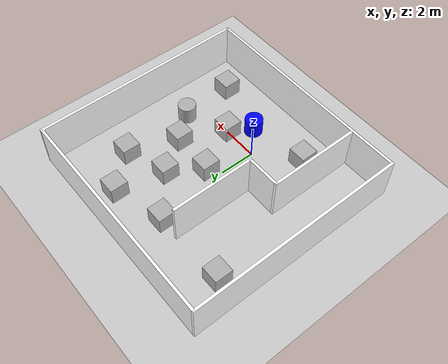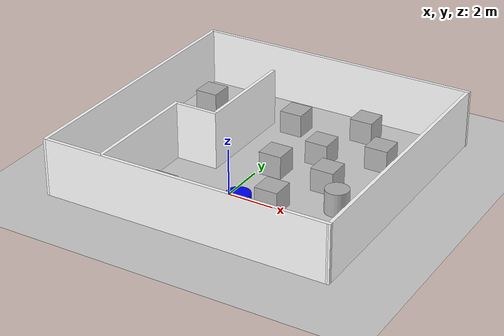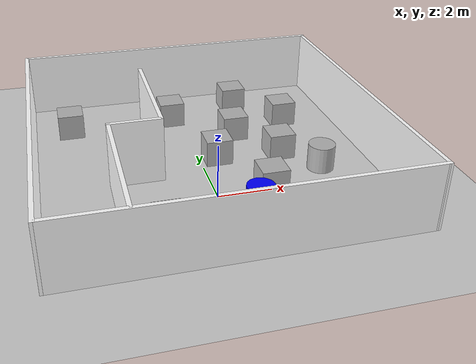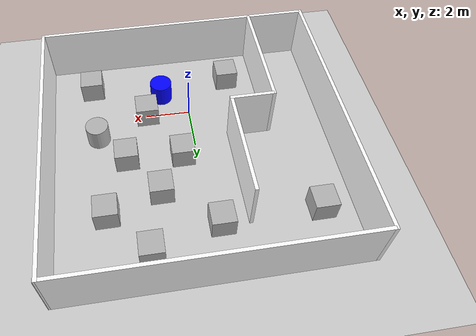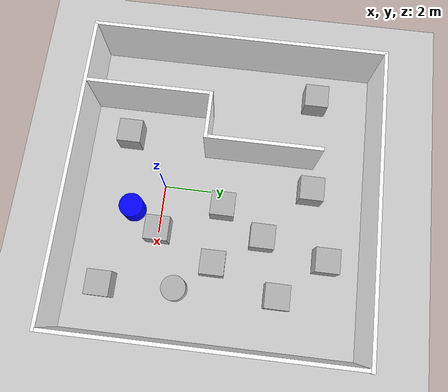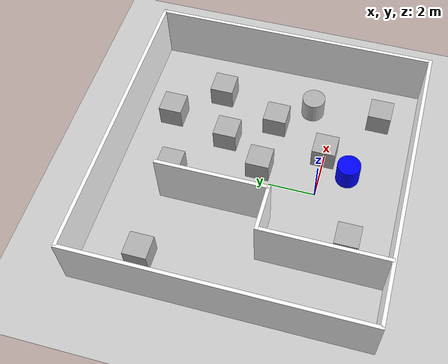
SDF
<sdf version='1.10'>
  <world name='default'>
    <physics name='1ms' type='ignored'>
      <max_step_size>0.001</max_step_size>
      <real_time_factor>1</real_time_factor>
      <real_time_update_rate>1000</real_time_update_rate>
    </physics>
    <plugin name='gz::sim::systems::Physics' filename='gz-sim-physics-system'/>
    <plugin name='gz::sim::systems::UserCommands' filename='gz-sim-user-commands-system'/>
    <plugin name='gz::sim::systems::SceneBroadcaster' filename='gz-sim-scene-broadcaster-system'/>
    <plugin name='gz::sim::systems::Contact' filename='gz-sim-contact-system'/>
    <gravity>0 0 -9.8000000000000007</gravity>
    <magnetic_field>6.0000000000000002e-06 2.3e-05 -4.1999999999999998e-05</magnetic_field>
    <atmosphere type='adiabatic'/>
    <scene>
      <ambient>0.400000006 0.400000006 0.400000006 1</ambient>
      <background>0.699999988 0.699999988 0.699999988 1</background>
      <shadows>true</shadows>
    </scene>
    <model name='ground_plane'>
      <static>true</static>
      <link name='link'>
        <collision name='collision'>
          <geometry>
            <plane>
              <normal>0 0 1</normal>
              <size>100 100</size>
            </plane>
          </geometry>
          <surface>
            <friction>
              <ode/>
            </friction>
            <bounce/>
            <contact/>
          </surface>
        </collision>
        <visual name='visual'>
          <geometry>
            <plane>
              <normal>0 0 1</normal>
              <size>100 100</size>
            </plane>
          </geometry>
          <material>
            <ambient>0.800000012 0.800000012 0.800000012 1</ambient>
            <diffuse>0.800000012 0.800000012 0.800000012 1</diffuse>
            <specular>0.800000012 0.800000012 0.800000012 1</specular>
          </material>
        </visual>
        <pose>0 0 0 0 0 0</pose>
        <inertial>
          <pose>0 0 0 0 0 0</pose>
          <mass>1</mass>
          <inertia>
            <ixx>1</ixx>
            <ixy>0</ixy>
            <ixz>0</ixz>
            <iyy>1</iyy>
            <iyz>0</iyz>
            <izz>1</izz>
          </inertia>
        </inertial>
        <enable_wind>false</enable_wind>
      </link>
      <pose>0 0 0 0 0 0</pose>
      <self_collide>false</self_collide>
    </model>
    <model name='simple_world_walls'>
      <static>true</static>
      <pose>0.21870299999999654 2.4856400000000023 0 0 0 7.7715611723760958e-16</pose>
      <link name='Wall_11'>
        <pose>-3.6911499999999999 -3.4349099999999999 1.25 0 0 1.5708</pose>
        <collision name='collision'>
          <geometry>
            <box>
              <size>5.25 0.14999999999999999 2.5</size>
            </box>
          </geometry>
          <surface>
            <friction>
              <ode/>
            </friction>
            <bounce/>
            <contact/>
          </surface>
        </collision>
        <visual name='visual'>
          <geometry>
            <box>
              <size>5.25 0.14999999999999999 2.5</size>
            </box>
          </geometry>
          <material>
            <ambient>1 1 1 1</ambient>
            <diffuse>1 1 1 1</diffuse>
          </material>
        </visual>
        <inertial>
          <pose>0 0 0 0 0 0</pose>
          <mass>1</mass>
          <inertia>
            <ixx>1</ixx>
            <ixy>0</ixy>
            <ixz>0</ixz>
            <iyy>1</iyy>
            <iyz>0</iyz>
            <izz>1</izz>
          </inertia>
        </inertial>
        <enable_wind>false</enable_wind>
      </link>
      <link name='Wall_12'>
        <pose>-2.7661499999999974 -0.8849140000000002 1.25 0 0 -7.7715611723760958e-16</pose>
        <collision name='collision'>
          <geometry>
            <box>
              <size>2 0.14999999999999999 2.5</size>
            </box>
          </geometry>
          <surface>
            <friction>
              <ode/>
            </friction>
            <bounce/>
            <contact/>
          </surface>
        </collision>
        <visual name='visual'>
          <geometry>
            <box>
              <size>2 0.14999999999999999 2.5</size>
            </box>
          </geometry>
          <material>
            <ambient>1 1 1 1</ambient>
            <diffuse>1 1 1 1</diffuse>
          </material>
        </visual>
        <inertial>
          <pose>0 0 0 0 0 0</pose>
          <mass>1</mass>
          <inertia>
            <ixx>1</ixx>
            <ixy>0</ixy>
            <ixz>0</ixz>
            <iyy>1</iyy>
            <iyz>0</iyz>
            <izz>1</izz>
          </inertia>
        </inertial>
        <enable_wind>false</enable_wind>
      </link>
      <link name='Wall_13'>
        <pose>-1.8411499999999956 1.4150899999999984 1.25 0 0 1.5707999999999998</pose>
        <collision name='collision'>
          <geometry>
            <box>
              <size>4.75 0.14999999999999999 2.5</size>
            </box>
          </geometry>
          <surface>
            <friction>
              <ode/>
            </friction>
            <bounce/>
            <contact/>
          </surface>
        </collision>
        <visual name='visual'>
          <geometry>
            <box>
              <size>4.75 0.14999999999999999 2.5</size>
            </box>
          </geometry>
          <material>
            <ambient>1 1 1 1</ambient>
            <diffuse>1 1 1 1</diffuse>
          </material>
        </visual>
        <inertial>
          <pose>0 0 0 0 0 0</pose>
          <mass>1</mass>
          <inertia>
            <ixx>1</ixx>
            <ixy>0</ixy>
            <ixz>0</ixz>
            <iyy>1</iyy>
            <iyz>0</iyz>
            <izz>1</izz>
          </inertia>
        </inertial>
        <enable_wind>false</enable_wind>
      </link>
      <link name='Wall_3'>
        <pose>-0.020767000000001617 -6.0502500000000019 1.25 0 0 -7.7715611723760958e-16</pose>
        <collision name='collision'>
          <geometry>
            <box>
              <size>12.5 0.14999999999999999 2.5</size>
            </box>
          </geometry>
          <surface>
            <friction>
              <ode/>
            </friction>
            <bounce/>
            <contact/>
          </surface>
        </collision>
        <visual name='visual'>
          <geometry>
            <box>
              <size>12.5 0.14999999999999999 2.5</size>
            </box>
          </geometry>
          <material>
            <ambient>1 1 1 1</ambient>
            <diffuse>1 1 1 1</diffuse>
          </material>
        </visual>
        <inertial>
          <pose>0 0 0 0 0 0</pose>
          <mass>1</mass>
          <inertia>
            <ixx>1</ixx>
            <ixy>0</ixy>
            <ixz>0</ixz>
            <iyy>1</iyy>
            <iyz>0</iyz>
            <izz>1</izz>
          </inertia>
        </inertial>
        <enable_wind>false</enable_wind>
      </link>
      <link name='Wall_4'>
        <pose>6.1311000000000018 -0.00024700000000743572 1.25 0 0 1.5746199999999997</pose>
        <collision name='collision'>
          <geometry>
            <box>
              <size>12.25 0.14999999999999999 2.5</size>
            </box>
          </geometry>
          <surface>
            <friction>
              <ode/>
            </friction>
            <bounce/>
            <contact/>
          </surface>
        </collision>
        <visual name='visual'>
          <geometry>
            <box>
              <size>12.25 0.14999999999999999 2.5</size>
            </box>
          </geometry>
          <material>
            <ambient>1 1 1 1</ambient>
            <diffuse>1 1 1 1</diffuse>
          </material>
        </visual>
        <inertial>
          <pose>0 0 0 0 0 0</pose>
          <mass>1</mass>
          <inertia>
            <ixx>1</ixx>
            <ixy>0</ixy>
            <ixz>0</ixz>
            <iyy>1</iyy>
            <iyz>0</iyz>
            <izz>1</izz>
          </inertia>
        </inertial>
        <enable_wind>false</enable_wind>
      </link>
      <link name='Wall_5'>
        <pose>-0.043897999999992221 6.0497499999999977 1.25 0 0 3.141589999999999</pose>
        <collision name='collision'>
          <geometry>
            <box>
              <size>12.5 0.14999999999999999 2.5</size>
            </box>
          </geometry>
          <surface>
            <friction>
              <ode/>
            </friction>
            <bounce/>
            <contact/>
          </surface>
        </collision>
        <visual name='visual'>
          <geometry>
            <box>
              <size>12.5 0.14999999999999999 2.5</size>
            </box>
          </geometry>
          <material>
            <ambient>1 1 1 1</ambient>
            <diffuse>1 1 1 1</diffuse>
          </material>
        </visual>
        <inertial>
          <pose>0 0 0 0 0 0</pose>
          <mass>1</mass>
          <inertia>
            <ixx>1</ixx>
            <ixy>0</ixy>
            <ixz>0</ixz>
            <iyy>1</iyy>
            <iyz>0</iyz>
            <izz>1</izz>
          </inertia>
        </inertial>
        <enable_wind>false</enable_wind>
      </link>
      <link name='Wall_9'>
        <pose>-6.3013699999999968 0.00048700000000234667 1.25 0 0 1.5707999999999998</pose>
        <collision name='collision'>
          <geometry>
            <box>
              <size>12.25 0.14999999999999999 2.5</size>
            </box>
          </geometry>
          <surface>
            <friction>
              <ode/>
            </friction>
            <bounce/>
            <contact/>
          </surface>
        </collision>
        <visual name='visual'>
          <geometry>
            <box>
              <size>12.25 0.14999999999999999 2.5</size>
            </box>
          </geometry>
          <material>
            <ambient>1 1 1 1</ambient>
            <diffuse>1 1 1 1</diffuse>
          </material>
        </visual>
        <inertial>
          <pose>0 0 0 0 0 0</pose>
          <mass>1</mass>
          <inertia>
            <ixx>1</ixx>
            <ixy>0</ixy>
            <ixz>0</ixz>
            <iyy>1</iyy>
            <iyz>0</iyz>
            <izz>1</izz>
          </inertia>
        </inertial>
        <enable_wind>false</enable_wind>
      </link>
      <self_collide>false</self_collide>
    </model>
    <model name='cylinder_obstacles'>
      <static>false</static>
      <link name='cylinder_1'>
        <pose>1.1699999999999999 -1.1599999999999999 0.5 0 0 0</pose>
        <collision name='collision'>
          <geometry>
            <cylinder>
              <radius>0.5</radius>
              <length>1</length>
            </cylinder>
          </geometry>
          <surface>
            <friction>
              <ode/>
            </friction>
            <bounce/>
            <contact/>
          </surface>
        </collision>
        <visual name='visual'>
          <geometry>
            <cylinder>
              <radius>0.5</radius>
              <length>1</length>
            </cylinder>
          </geometry>
          <material>
            <ambient>0 0 1 1</ambient>
            <diffuse>0 0 1 1</diffuse>
          </material>
        </visual>
        <inertial>
          <pose>0 0 0 0 0 0</pose>
          <mass>1</mass>
          <inertia>
            <ixx>1</ixx>
            <ixy>0</ixy>
            <ixz>0</ixz>
            <iyy>1</iyy>
            <iyz>0</iyz>
            <izz>1</izz>
          </inertia>
        </inertial>
        <enable_wind>false</enable_wind>
      </link>
      <pose>0 0 -5.7163865080367415e-07 -3.6662838521220562e-20 2.7712421664070889e-19 2.8676309396003893e-22</pose>
      <self_collide>false</self_collide>
    </model>
    <model name='box'>
      <pose>0.65675670861981139 2.566512989994199 0.49999999990199806 6.2287739151293738e-22 9.3279666454713669e-22 -3.6315533669320137e-22</pose>
      <link name='box_link'>
        <inertial>
          <inertia>
            <ixx>0.16666</ixx>
            <ixy>0</ixy>
            <ixz>0</ixz>
            <iyy>0.16666</iyy>
            <iyz>0</iyz>
            <izz>0.16666</izz>
          </inertia>
          <mass>1</mass>
          <pose>0 0 0 0 0 0</pose>
        </inertial>
        <collision name='box_collision'>
          <geometry>
            <box>
              <size>1 1 1</size>
            </box>
          </geometry>
          <surface>
            <friction>
              <ode/>
            </friction>
            <bounce/>
            <contact/>
          </surface>
        </collision>
        <visual name='box_visual'>
          <geometry>
            <box>
              <size>1 1 1</size>
            </box>
          </geometry>
          <material>
            <ambient>0.300000012 0.300000012 0.300000012 1</ambient>
            <diffuse>0.699999988 0.699999988 0.699999988 1</diffuse>
            <specular>1 1 1 1</specular>
          </material>
        </visual>
        <pose>0 0 0 0 0 0</pose>
        <enable_wind>false</enable_wind>
      </link>
      <static>false</static>
      <self_collide>false</self_collide>
    </model>
    <model name='box_0'>
      <pose>-2.05357444367782 -1.7468708328964424 0.49999999990199806 6.2287739151293738e-22 9.3279666454713669e-22 -3.6315533669320137e-22</pose>
      <link name='box_link'>
        <inertial>
          <inertia>
            <ixx>0.16666</ixx>
            <ixy>0</ixy>
            <ixz>0</ixz>
            <iyy>0.16666</iyy>
            <iyz>0</iyz>
            <izz>0.16666</izz>
          </inertia>
          <mass>1</mass>
          <pose>0 0 0 0 0 0</pose>
        </inertial>
        <collision name='box_collision'>
          <geometry>
            <box>
              <size>1 1 1</size>
            </box>
          </geometry>
          <surface>
            <friction>
              <ode/>
            </friction>
            <bounce/>
            <contact/>
          </surface>
        </collision>
        <visual name='box_visual'>
          <geometry>
            <box>
              <size>1 1 1</size>
            </box>
          </geometry>
          <material>
            <ambient>0.300000012 0.300000012 0.300000012 1</ambient>
            <diffuse>0.699999988 0.699999988 0.699999988 1</diffuse>
            <specular>1 1 1 1</specular>
          </material>
        </visual>
        <pose>0 0 0 0 0 0</pose>
        <enable_wind>false</enable_wind>
      </link>
      <static>false</static>
      <self_collide>false</self_collide>
    </model>
    <model name='box_1'>
      <pose>1.9667049210261833 0.013356836982447051 0.49999999990199806 6.2287739151293738e-22 9.3279666454713669e-22 -3.6315533669320137e-22</pose>
      <link name='box_link'>
        <inertial>
          <inertia>
            <ixx>0.16666</ixx>
            <ixy>0</ixy>
            <ixz>0</ixz>
            <iyy>0.16666</iyy>
            <iyz>0</iyz>
            <izz>0.16666</izz>
          </inertia>
          <mass>1</mass>
          <pose>0 0 0 0 0 0</pose>
        </inertial>
        <collision name='box_collision'>
          <geometry>
            <box>
              <size>1 1 1</size>
            </box>
          </geometry>
          <surface>
            <friction>
              <ode/>
            </friction>
            <bounce/>
            <contact/>
          </surface>
        </collision>
        <visual name='box_visual'>
          <geometry>
            <box>
              <size>1 1 1</size>
            </box>
          </geometry>
          <material>
            <ambient>0.300000012 0.300000012 0.300000012 1</ambient>
            <diffuse>0.699999988 0.699999988 0.699999988 1</diffuse>
            <specular>1 1 1 1</specular>
          </material>
        </visual>
        <pose>0 0 0 0 0 0</pose>
        <enable_wind>false</enable_wind>
      </link>
      <static>false</static>
      <self_collide>false</self_collide>
    </model>
    <model name='box_2'>
      <pose>3.0953835845117559 2.4361445422243682 0.49999999990199806 6.2287739151293738e-22 9.3279666454713669e-22 -3.6315533669320137e-22</pose>
      <link name='box_link'>
        <inertial>
          <inertia>
            <ixx>0.16666</ixx>
            <ixy>0</ixy>
            <ixz>0</ixz>
            <iyy>0.16666</iyy>
            <iyz>0</iyz>
            <izz>0.16666</izz>
          </inertia>
          <mass>1</mass>
          <pose>0 0 0 0 0 0</pose>
        </inertial>
        <collision name='box_collision'>
          <geometry>
            <box>
              <size>1 1 1</size>
            </box>
          </geometry>
          <surface>
            <friction>
              <ode/>
            </friction>
            <bounce/>
            <contact/>
          </surface>
        </collision>
        <visual name='box_visual'>
          <geometry>
            <box>
              <size>1 1 1</size>
            </box>
          </geometry>
          <material>
            <ambient>0.300000012 0.300000012 0.300000012 1</ambient>
            <diffuse>0.699999988 0.699999988 0.699999988 1</diffuse>
            <specular>1 1 1 1</specular>
          </material>
        </visual>
        <pose>0 0 0 0 0 0</pose>
        <enable_wind>false</enable_wind>
      </link>
      <static>false</static>
      <self_collide>false</self_collide>
    </model>
    <model name='box_3'>
      <pose>1.8002298266211816 4.3268263190330387 0.49999999990199806 6.2287739151293738e-22 9.3279666454713669e-22 -3.6315533669320137e-22</pose>
      <link name='box_link'>
        <inertial>
          <inertia>
            <ixx>0.16666</ixx>
            <ixy>0</ixy>
            <ixz>0</ixz>
            <iyy>0.16666</iyy>
            <iyz>0</iyz>
            <izz>0.16666</izz>
          </inertia>
          <mass>1</mass>
          <pose>0 0 0 0 0 0</pose>
        </inertial>
        <collision name='box_collision'>
          <geometry>
            <box>
              <size>1 1 1</size>
            </box>
          </geometry>
          <surface>
            <friction>
              <ode/>
            </friction>
            <bounce/>
            <contact/>
          </surface>
        </collision>
        <visual name='box_visual'>
          <geometry>
            <box>
              <size>1 1 1</size>
            </box>
          </geometry>
          <material>
            <ambient>0.300000012 0.300000012 0.300000012 1</ambient>
            <diffuse>0.699999988 0.699999988 0.699999988 1</diffuse>
            <specular>1 1 1 1</specular>
          </material>
        </visual>
        <pose>0 0 0 0 0 0</pose>
        <enable_wind>false</enable_wind>
      </link>
      <static>false</static>
      <self_collide>false</self_collide>
    </model>
    <model name='box_4'>
      <pose>-0.42423659098912697 6.1628344210863037 0.49999999990199806 6.2287739151293738e-22 9.3279666454713669e-22 -3.6315533669320137e-22</pose>
      <link name='box_link'>
        <inertial>
          <inertia>
            <ixx>0.16666</ixx>
            <ixy>0</ixy>
            <ixz>0</ixz>
            <iyy>0.16666</iyy>
            <iyz>0</iyz>
            <izz>0.16666</izz>
          </inertia>
          <mass>1</mass>
          <pose>0 0 0 0 0 0</pose>
        </inertial>
        <collision name='box_collision'>
          <geometry>
            <box>
              <size>1 1 1</size>
            </box>
          </geometry>
          <surface>
            <friction>
              <ode/>
            </friction>
            <bounce/>
            <contact/>
          </surface>
        </collision>
        <visual name='box_visual'>
          <geometry>
            <box>
              <size>1 1 1</size>
            </box>
          </geometry>
          <material>
            <ambient>0.300000012 0.300000012 0.300000012 1</ambient>
            <diffuse>0.699999988 0.699999988 0.699999988 1</diffuse>
            <specular>1 1 1 1</specular>
          </material>
        </visual>
        <pose>0 0 0 0 0 0</pose>
        <enable_wind>false</enable_wind>
      </link>
      <static>false</static>
      <self_collide>false</self_collide>
    </model>
    <model name='box_5'>
      <pose>2.4734349247862228 7.0044930017563871 0.49999999990199806 6.2287739151293738e-22 9.3279666454713669e-22 -3.6315533669320137e-22</pose>
      <link name='box_link'>
        <inertial>
          <inertia>
            <ixx>0.16666</ixx>
            <ixy>0</ixy>
            <ixz>0</ixz>
            <iyy>0.16666</iyy>
            <iyz>0</iyz>
            <izz>0.16666</izz>
          </inertia>
          <mass>1</mass>
          <pose>0 0 0 0 0 0</pose>
        </inertial>
        <collision name='box_collision'>
          <geometry>
            <box>
              <size>1 1 1</size>
            </box>
          </geometry>
          <surface>
            <friction>
              <ode/>
            </friction>
            <bounce/>
            <contact/>
          </surface>
        </collision>
        <visual name='box_visual'>
          <geometry>
            <box>
              <size>1 1 1</size>
            </box>
          </geometry>
          <material>
            <ambient>0.300000012 0.300000012 0.300000012 1</ambient>
            <diffuse>0.699999988 0.699999988 0.699999988 1</diffuse>
            <specular>1 1 1 1</specular>
          </material>
        </visual>
        <pose>0 0 0 0 0 0</pose>
        <enable_wind>false</enable_wind>
      </link>
      <static>false</static>
      <self_collide>false</self_collide>
    </model>
    <model name='box_6'>
      <pose>4.4158676252481852 -1.9569870360399297 0.49999999990199806 -2.6020270640359596e-21 1.5823252563607089e-21 -1.4428456089909881e-22</pose>
      <link name='box_link'>
        <inertial>
          <inertia>
            <ixx>0.16666</ixx>
            <ixy>0</ixy>
            <ixz>0</ixz>
            <iyy>0.16666</iyy>
            <iyz>0</iyz>
            <izz>0.16666</izz>
          </inertia>
          <mass>1</mass>
          <pose>0 0 0 0 0 0</pose>
        </inertial>
        <collision name='box_collision'>
          <geometry>
            <box>
              <size>1 1 1</size>
            </box>
          </geometry>
          <surface>
            <friction>
              <ode/>
            </friction>
            <bounce/>
            <contact/>
          </surface>
        </collision>
        <visual name='box_visual'>
          <geometry>
            <box>
              <size>1 1 1</size>
            </box>
          </geometry>
          <material>
            <ambient>0.300000012 0.300000012 0.300000012 1</ambient>
            <diffuse>0.699999988 0.699999988 0.699999988 1</diffuse>
            <specular>1 1 1 1</specular>
          </material>
        </visual>
        <pose>0 0 0 0 0 0</pose>
        <enable_wind>false</enable_wind>
      </link>
      <static>false</static>
      <self_collide>false</self_collide>
    </model>
    <model name='box_7'>
      <pose>4.1155127929983619 5.1312260801820537 0.49999999990199806 6.2287739151293738e-22 9.3279666454713669e-22 -3.6315533669320137e-22</pose>
      <link name='box_link'>
        <inertial>
          <inertia>
            <ixx>0.16666</ixx>
            <ixy>0</ixy>
            <ixz>0</ixz>
            <iyy>0.16666</iyy>
            <iyz>0</iyz>
            <izz>0.16666</izz>
          </inertia>
          <mass>1</mass>
          <pose>0 0 0 0 0 0</pose>
        </inertial>
        <collision name='box_collision'>
          <geometry>
            <box>
              <size>1 1 1</size>
            </box>
          </geometry>
          <surface>
            <friction>
              <ode/>
            </friction>
            <bounce/>
            <contact/>
          </surface>
        </collision>
        <visual name='box_visual'>
          <geometry>
            <box>
              <size>1 1 1</size>
            </box>
          </geometry>
          <material>
            <ambient>0.300000012 0.300000012 0.300000012 1</ambient>
            <diffuse>0.699999988 0.699999988 0.699999988 1</diffuse>
            <specular>1 1 1 1</specular>
          </material>
        </visual>
        <pose>0 0 0 0 0 0</pose>
        <enable_wind>false</enable_wind>
      </link>
      <static>false</static>
      <self_collide>false</self_collide>
    </model>
    <model name='cylinder'>
      <pose>4.2685803157521462 1.0320703136037253 0.49999942638036005 1.0557884428229737e-20 -1.7805435481738776e-19 -4.076629819539807e-21</pose>
      <link name='cylinder_link'>
        <inertial>
          <inertia>
            <ixx>0.14580000000000001</ixx>
            <ixy>0</ixy>
            <ixz>0</ixz>
            <iyy>0.14580000000000001</iyy>
            <iyz>0</iyz>
            <izz>0.125</izz>
          </inertia>
          <mass>1</mass>
          <pose>0 0 0 0 0 0</pose>
        </inertial>
        <collision name='cylinder_collision'>
          <geometry>
            <cylinder>
              <radius>0.5</radius>
              <length>1</length>
            </cylinder>
          </geometry>
          <surface>
            <friction>
              <ode/>
            </friction>
            <bounce/>
            <contact/>
          </surface>
        </collision>
        <visual name='cylinder_visual'>
          <geometry>
            <cylinder>
              <radius>0.5</radius>
              <length>1</length>
            </cylinder>
          </geometry>
          <material>
            <ambient>0.300000012 0.300000012 0.300000012 1</ambient>
            <diffuse>0.699999988 0.699999988 0.699999988 1</diffuse>
            <specular>1 1 1 1</specular>
          </material>
        </visual>
        <pose>0 0 0 0 0 0</pose>
        <enable_wind>false</enable_wind>
      </link>
      <static>false</static>
      <self_collide>false</self_collide>
    </model>
    <model name='box_8'>
      <pose>-4.5980873675819707 6.0546161993427665 0.49999999990199806 6.2287739151293738e-22 9.3279666454713669e-22 -3.6315533669320137e-22</pose>
      <link name='box_link'>
        <inertial>
          <inertia>
            <ixx>0.16666</ixx>
            <ixy>0</ixy>
            <ixz>0</ixz>
            <iyy>0.16666</iyy>
            <iyz>0</iyz>
            <izz>0.16666</izz>
          </inertia>
          <mass>1</mass>
          <pose>0 0 0 0 0 0</pose>
        </inertial>
        <collision name='box_collision'>
          <geometry>
            <box>
              <size>1 1 1</size>
            </box>
          </geometry>
          <surface>
            <friction>
              <ode/>
            </friction>
            <bounce/>
            <contact/>
          </surface>
        </collision>
        <visual name='box_visual'>
          <geometry>
            <box>
              <size>1 1 1</size>
            </box>
          </geometry>
          <material>
            <ambient>0.300000012 0.300000012 0.300000012 1</ambient>
            <diffuse>0.699999988 0.699999988 0.699999988 1</diffuse>
            <specular>1 1 1 1</specular>
          </material>
        </visual>
        <pose>0 0 0 0 0 0</pose>
        <enable_wind>false</enable_wind>
      </link>
      <static>false</static>
      <self_collide>false</self_collide>
    </model>
    <light name='sun' type='directional'>
      <pose>0 0 10 0 0 0</pose>
      <cast_shadows>true</cast_shadows>
      <intensity>1</intensity>
      <direction>-0.5 0.10000000000000001 -0.90000000000000002</direction>
      <diffuse>0.800000012 0.800000012 0.800000012 1</diffuse>
      <specular>0.200000003 0.200000003 0.200000003 1</specular>
      <attenuation>
        <range>10</range>
        <linear>1</linear>
        <constant>1</constant>
        <quadratic>0</quadratic>
      </attenuation>
      <spot>
        <inner_angle>0</inner_angle>
        <outer_angle>0</outer_angle>
        <falloff>0</falloff>
      </spot>
    </light>
  </world>
</sdf>
